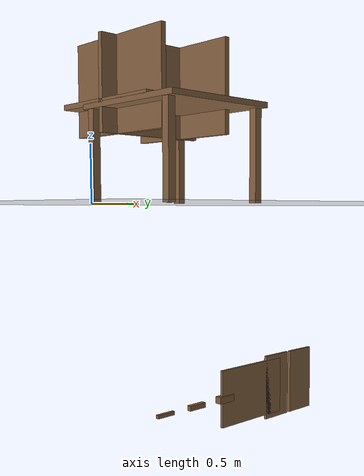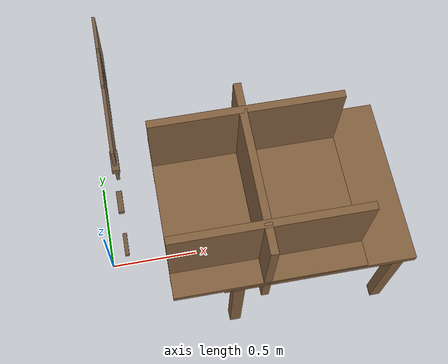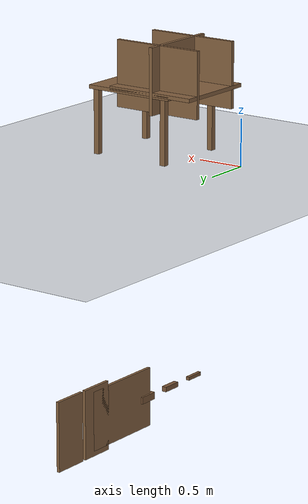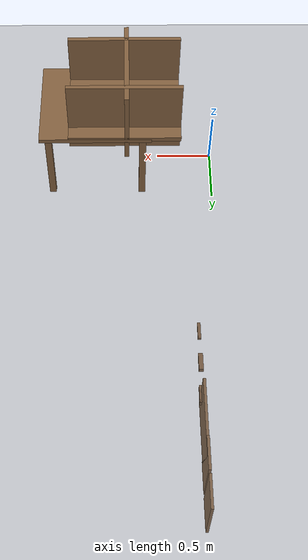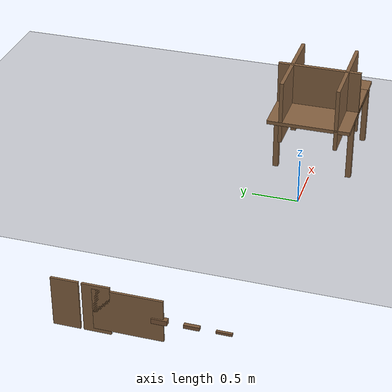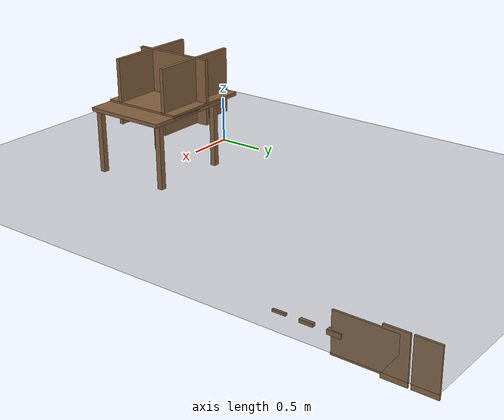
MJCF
<mujoco model="enclosure_param">
  <compiler angle="radian" autolimits="true" boundmass="0" balanceinertia="true"/>
  <option impratio="10" gravity="0 0 -9.8" integrator="implicitfast" cone="elliptic" jacobian="sparse" noslip_iterations="4">
    <flag multiccd="enable" contact="enable" warmstart="enable"/>
  </option>
  <size njmax="6000" nconmax="6000"/>
  <visual>
    <global offwidth="1280" offheight="720"/>
    <map znear="0.001"/>
    <headlight ambient="0.5 0.5 0.5" diffuse="0.65 0.65 0.65"/>
  </visual>
  <asset>
    <texture name="woodtex" type="2d" builtin="flat" rgb1="0.52 0.38 0.25" width="32" height="32"/>
    <material name="wood" texture="woodtex" reflectance="0.05"/>
    <texture name="floortex" type="2d" builtin="checker" rgb1="0.45 0.43 0.40" rgb2="0.38 0.36 0.34" width="300" height="300"/>
    <material name="floormat" texture="floortex" texrepeat="10 10" reflectance="0.05"/>
  </asset>
  <default>
    <default class="slab">
      <geom contype="8" conaffinity="15" group="0" friction="0.9 0.9 0.001"
            solref="0.02 1" solimp="0.998 0.998 0.001" density="700" material="wood"/>
    </default>
  </default>
  <worldbody>
    <light name="l_key"  pos="0.4 0.5 2.5" dir="0 0 -1" diffuse="0.95 0.95 0.95"/>
    <light name="l_fill" pos="-0.6 -0.7 2.1" dir="0.3 0.3 -1" diffuse="0.5 0.5 0.5"/>
    <light name="l_front" pos="-0.4 0 1.4" dir="0.7 0 -0.4" diffuse="0.45 0.45 0.45"/>
    <geom name="floor" type="plane" size="5 5 0.1" pos="0 0 0" material="floormat" contype="8" conaffinity="15"/>
    <geom name="shelf_board" class="slab" type="box" pos="1.08 0 0.70" size="0.50 0.45 0.02"/>
    <geom name="stand_leg1" class="slab" type="box" pos="0.66 0.41 0.34" size="0.03 0.03 0.34"/>
    <geom name="stand_leg2" class="slab" type="box" pos="0.66 -0.41 0.34" size="0.03 0.03 0.34"/>
    <geom name="stand_leg3" class="slab" type="box" pos="1.50 0.41 0.34" size="0.03 0.03 0.34"/>
    <geom name="stand_leg4" class="slab" type="box" pos="1.50 -0.41 0.34" size="0.03 0.03 0.34"/>
    <body name="encl_left" mocap="true" pos="0.82 0.30 0.85">
      <geom name="encl_left_g" class="slab" type="box" size="0.50 0.02 0.35"/>
    </body>
    <body name="encl_right" mocap="true" pos="0.82 -0.30 0.85">
      <geom name="encl_right_g" class="slab" type="box" size="0.50 0.02 0.35"/>
    </body>
    <body name="encl_top" mocap="true" pos="0.82 0 0.72">
      <geom name="encl_top_g" class="slab" type="box" size="0.50 0.45 0.02"/>
    </body>
    <body name="encl_back" mocap="true" pos="0.80 0 0.85">
      <geom name="encl_back_g" class="slab" type="box" size="0.02 0.45 0.35"/>
    </body>
    <body name="protr_s" mocap="true" pos="0 0.8 -2.0">
      <geom name="protr_s_g" class="slab" type="box" size="0.0175 0.10 0.0175" rgba="0.48 0.34 0.22 1"/>
    </body>
    <body name="protr_m" mocap="true" pos="0 1.2 -2.0">
      <geom name="protr_m_g" class="slab" type="box" size="0.025 0.10 0.025" rgba="0.48 0.34 0.22 1"/>
    </body>
    <body name="protr_l" mocap="true" pos="0 1.6 -2.0">
      <geom name="protr_l_g" class="slab" type="box" size="0.035 0.10 0.035" rgba="0.48 0.34 0.22 1"/>
    </body>
    <body name="front_top" mocap="true" pos="0 2.0 -2.0">
      <geom name="front_top_g" class="slab" type="box" size="0.015 0.45 0.30"/>
    </body>
    <body name="front_left" mocap="true" pos="0 2.4 -2.0">
      <geom name="front_left_g" class="slab" type="box" size="0.015 0.18 0.35"/>
    </body>
    <body name="front_right" mocap="true" pos="0 2.8 -2.0">
      <geom name="front_right_g" class="slab" type="box" size="0.015 0.18 0.35"/>
    </body>
  </worldbody>
</mujoco>
